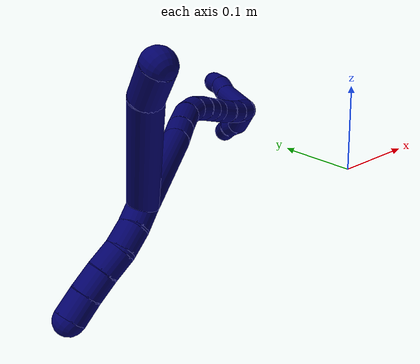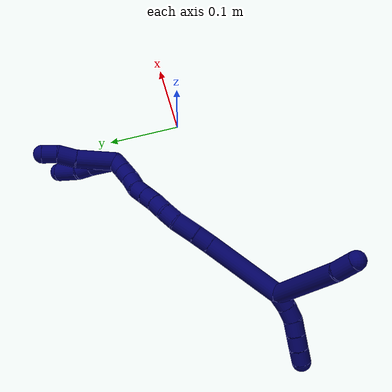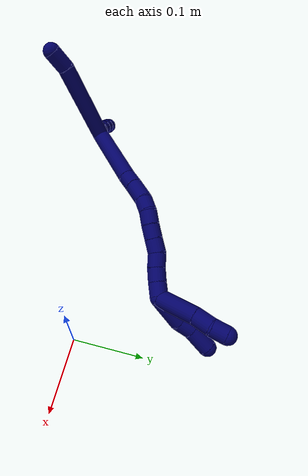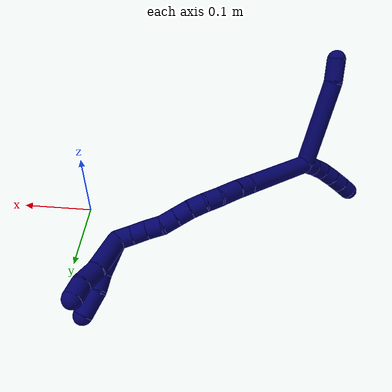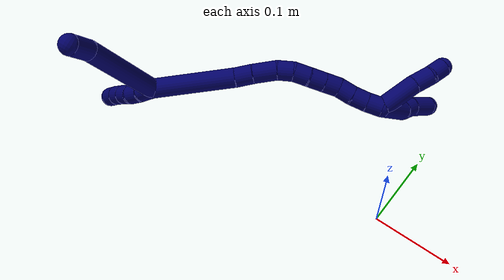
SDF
<sdf version="1.7">
 <world name="default">
  <model name="7">
   <static>0</static>
   <link name="7">
    <collision name="collision-cylinder-e_1_2_8">
     <pose>-0.058359 0.011297 0.002438 -1.35821 -1.37529 1.17093</pose>
     <geometry><cylinder><radius>0.0125</radius><length>0.118984</length></cylinder></geometry>
     <surface>
      <friction><ode><mu>1.16</mu><mu2>1.16</mu2><slip1>0</slip1><slip2>0</slip2></ode></friction>
      <contact><ode><kp>1e+06</kp><kd>1</kd><max_vel>0</max_vel><min_depth>0.001</min_depth></ode></contact>
     </surface>
    </collision>
    <visual name="visual-cylinder-e_1_2_8">
     <pose>-0.058359 0.011297 0.002438 -1.35821 -1.37529 1.17093</pose>
     <geometry><cylinder><radius>0.0125</radius><length>0.118984</length></cylinder></geometry>
     <material><ambient>0.003922 0 0.403922 1</ambient></material>
    </visual>
    <collision name="collision-cylinder-e_2_8_6">
     <pose>-0.130987 0.027706 0.008155 -1.0006 -1.16847 0.693751</pose>
     <geometry><cylinder><radius>0.0125</radius><length>0.031016</length></cylinder></geometry>
     <surface>
      <friction><ode><mu>1.16</mu><mu2>1.16</mu2><slip1>0</slip1><slip2>0</slip2></ode></friction>
      <contact><ode><kp>1e+06</kp><kd>1</kd><max_vel>0</max_vel><min_depth>0.001</min_depth></ode></contact>
     </surface>
    </collision>
    <visual name="visual-cylinder-e_2_8_6">
     <pose>-0.130987 0.027706 0.008155 -1.0006 -1.16847 0.693751</pose>
     <geometry><cylinder><radius>0.0125</radius><length>0.031016</length></cylinder></geometry>
     <material><ambient>0.003922 0 0.403922 1</ambient></material>
    </visual>
    <collision name="collision-cylinder-e_1_2_9">
     <pose>0.000126 -0.008248 0.005652 0.970025 0.012557 0.006618</pose>
     <geometry><cylinder><radius>0.0125</radius><length>0.02</length></cylinder></geometry>
     <surface>
      <friction><ode><mu>1.16</mu><mu2>1.16</mu2><slip1>0</slip1><slip2>0</slip2></ode></friction>
      <contact><ode><kp>1e+06</kp><kd>1</kd><max_vel>0</max_vel><min_depth>0.001</min_depth></ode></contact>
     </surface>
    </collision>
    <visual name="visual-cylinder-e_1_2_9">
     <pose>0.000126 -0.008248 0.005652 0.970025 0.012557 0.006618</pose>
     <geometry><cylinder><radius>0.0125</radius><length>0.02</length></cylinder></geometry>
     <material><ambient>0.003922 0 0.403922 1</ambient></material>
    </visual>
    <collision name="collision-cylinder-e_2_9_10">
     <pose>0.000908 -0.025428 0.015755 1.10846 0.06571 0.04068</pose>
     <geometry><cylinder><radius>0.0125</radius><length>0.02</length></cylinder></geometry>
     <surface>
      <friction><ode><mu>1.16</mu><mu2>1.16</mu2><slip1>0</slip1><slip2>0</slip2></ode></friction>
      <contact><ode><kp>1e+06</kp><kd>1</kd><max_vel>0</max_vel><min_depth>0.001</min_depth></ode></contact>
     </surface>
    </collision>
    <visual name="visual-cylinder-e_2_9_10">
     <pose>0.000908 -0.025428 0.015755 1.10846 0.06571 0.04068</pose>
     <geometry><cylinder><radius>0.0125</radius><length>0.02</length></cylinder></geometry>
     <material><ambient>0.003922 0 0.403922 1</ambient></material>
    </visual>
    <collision name="collision-cylinder-e_3_10_11">
     <pose>0.00331 -0.043912 0.022591 1.32622 0.175501 0.137221</pose>
     <geometry><cylinder><radius>0.0125</radius><length>0.02</length></cylinder></geometry>
     <surface>
      <friction><ode><mu>1.16</mu><mu2>1.16</mu2><slip1>0</slip1><slip2>0</slip2></ode></friction>
      <contact><ode><kp>1e+06</kp><kd>1</kd><max_vel>0</max_vel><min_depth>0.001</min_depth></ode></contact>
     </surface>
    </collision>
    <visual name="visual-cylinder-e_3_10_11">
     <pose>0.00331 -0.043912 0.022591 1.32622 0.175501 0.137221</pose>
     <geometry><cylinder><radius>0.0125</radius><length>0.02</length></cylinder></geometry>
     <material><ambient>0.003922 0 0.403922 1</ambient></material>
    </visual>
    <collision name="collision-cylinder-e_4_11_12">
     <pose>0.00727 -0.062838 0.027668 1.29103 0.223185 0.168394</pose>
     <geometry><cylinder><radius>0.0125</radius><length>0.02</length></cylinder></geometry>
     <surface>
      <friction><ode><mu>1.16</mu><mu2>1.16</mu2><slip1>0</slip1><slip2>0</slip2></ode></friction>
      <contact><ode><kp>1e+06</kp><kd>1</kd><max_vel>0</max_vel><min_depth>0.001</min_depth></ode></contact>
     </surface>
    </collision>
    <visual name="visual-cylinder-e_4_11_12">
     <pose>0.00727 -0.062838 0.027668 1.29103 0.223185 0.168394</pose>
     <geometry><cylinder><radius>0.0125</radius><length>0.02</length></cylinder></geometry>
     <material><ambient>0.003922 0 0.403922 1</ambient></material>
    </visual>
    <collision name="collision-cylinder-e_5_12_5">
     <pose>0.012014 -0.081394 0.033404 1.25074 0.255911 0.185263</pose>
     <geometry><cylinder><radius>0.0125</radius><length>0.02</length></cylinder></geometry>
     <surface>
      <friction><ode><mu>1.16</mu><mu2>1.16</mu2><slip1>0</slip1><slip2>0</slip2></ode></friction>
      <contact><ode><kp>1e+06</kp><kd>1</kd><max_vel>0</max_vel><min_depth>0.001</min_depth></ode></contact>
     </surface>
    </collision>
    <visual name="visual-cylinder-e_5_12_5">
     <pose>0.012014 -0.081394 0.033404 1.25074 0.255911 0.185263</pose>
     <geometry><cylinder><radius>0.0125</radius><length>0.02</length></cylinder></geometry>
     <material><ambient>0.003922 0 0.403922 1</ambient></material>
    </visual>
    <collision name="collision-cylinder-e_1_2_13">
     <pose>0.023101 0.035407 -0.032645 -2.31562 0.447251 -0.957502</pose>
     <geometry><cylinder><radius>0.0125</radius><length>0.106827</length></cylinder></geometry>
     <surface>
      <friction><ode><mu>1.16</mu><mu2>1.16</mu2><slip1>0</slip1><slip2>0</slip2></ode></friction>
      <contact><ode><kp>1e+06</kp><kd>1</kd><max_vel>0</max_vel><min_depth>0.001</min_depth></ode></contact>
     </surface>
    </collision>
    <visual name="visual-cylinder-e_1_2_13">
     <pose>0.023101 0.035407 -0.032645 -2.31562 0.447251 -0.957502</pose>
     <geometry><cylinder><radius>0.0125</radius><length>0.106827</length></cylinder></geometry>
     <material><ambient>0.003922 0 0.403922 1</ambient></material>
    </visual>
    <collision name="collision-cylinder-e_2_13_14">
     <pose>0.050439 0.078006 -0.072651 -2.36788 0.390593 -0.904092</pose>
     <geometry><cylinder><radius>0.0125</radius><length>0.022258</length></cylinder></geometry>
     <surface>
      <friction><ode><mu>1.16</mu><mu2>1.16</mu2><slip1>0</slip1><slip2>0</slip2></ode></friction>
      <contact><ode><kp>1e+06</kp><kd>1</kd><max_vel>0</max_vel><min_depth>0.001</min_depth></ode></contact>
     </surface>
    </collision>
    <visual name="visual-cylinder-e_2_13_14">
     <pose>0.050439 0.078006 -0.072651 -2.36788 0.390593 -0.904092</pose>
     <geometry><cylinder><radius>0.0125</radius><length>0.022258</length></cylinder></geometry>
     <material><ambient>0.003922 0 0.403922 1</ambient></material>
    </visual>
    <collision name="collision-cylinder-e_3_14_15">
     <pose>0.061489 0.094783 -0.089626 -2.35766 0.465072 -1.04055</pose>
     <geometry><cylinder><radius>0.0125</radius><length>0.03038</length></cylinder></geometry>
     <surface>
      <friction><ode><mu>1.16</mu><mu2>1.16</mu2><slip1>0</slip1><slip2>0</slip2></ode></friction>
      <contact><ode><kp>1e+06</kp><kd>1</kd><max_vel>0</max_vel><min_depth>0.001</min_depth></ode></contact>
     </surface>
    </collision>
    <visual name="visual-cylinder-e_3_14_15">
     <pose>0.061489 0.094783 -0.089626 -2.35766 0.465072 -1.04055</pose>
     <geometry><cylinder><radius>0.0125</radius><length>0.03038</length></cylinder></geometry>
     <material><ambient>0.003922 0 0.403922 1</ambient></material>
    </visual>
    <collision name="collision-cylinder-e_4_15_16">
     <pose>0.074033 0.111448 -0.10373 -2.13597 0.599773 -1.02439</pose>
     <geometry><cylinder><radius>0.0125</radius><length>0.020308</length></cylinder></geometry>
     <surface>
      <friction><ode><mu>1.16</mu><mu2>1.16</mu2><slip1>0</slip1><slip2>0</slip2></ode></friction>
      <contact><ode><kp>1e+06</kp><kd>1</kd><max_vel>0</max_vel><min_depth>0.001</min_depth></ode></contact>
     </surface>
    </collision>
    <visual name="visual-cylinder-e_4_15_16">
     <pose>0.074033 0.111448 -0.10373 -2.13597 0.599773 -1.02439</pose>
     <geometry><cylinder><radius>0.0125</radius><length>0.020308</length></cylinder></geometry>
     <material><ambient>0.003922 0 0.403922 1</ambient></material>
    </visual>
    <collision name="collision-cylinder-e_5_16_17">
     <pose>0.08701 0.125076 -0.110473 -1.90233 0.807903 -1.0797</pose>
     <geometry><cylinder><radius>0.0125</radius><length>0.020049</length></cylinder></geometry>
     <surface>
      <friction><ode><mu>1.16</mu><mu2>1.16</mu2><slip1>0</slip1><slip2>0</slip2></ode></friction>
      <contact><ode><kp>1e+06</kp><kd>1</kd><max_vel>0</max_vel><min_depth>0.001</min_depth></ode></contact>
     </surface>
    </collision>
    <visual name="visual-cylinder-e_5_16_17">
     <pose>0.08701 0.125076 -0.110473 -1.90233 0.807903 -1.0797</pose>
     <geometry><cylinder><radius>0.0125</radius><length>0.020049</length></cylinder></geometry>
     <material><ambient>0.003922 0 0.403922 1</ambient></material>
    </visual>
    <collision name="collision-cylinder-e_6_17_18">
     <pose>0.102156 0.137379 -0.115105 -1.96266 0.903432 -1.25522</pose>
     <geometry><cylinder><radius>0.0125</radius><length>0.020116</length></cylinder></geometry>
     <surface>
      <friction><ode><mu>1.16</mu><mu2>1.16</mu2><slip1>0</slip1><slip2>0</slip2></ode></friction>
      <contact><ode><kp>1e+06</kp><kd>1</kd><max_vel>0</max_vel><min_depth>0.001</min_depth></ode></contact>
     </surface>
    </collision>
    <visual name="visual-cylinder-e_6_17_18">
     <pose>0.102156 0.137379 -0.115105 -1.96266 0.903432 -1.25522</pose>
     <geometry><cylinder><radius>0.0125</radius><length>0.020116</length></cylinder></geometry>
     <material><ambient>0.003922 0 0.403922 1</ambient></material>
    </visual>
    <collision name="collision-cylinder-e_7_18_19">
     <pose>0.117902 0.148841 -0.11993 -1.97573 0.901144 -1.26594</pose>
     <geometry><cylinder><radius>0.0125</radius><length>0.020013</length></cylinder></geometry>
     <surface>
      <friction><ode><mu>1.16</mu><mu2>1.16</mu2><slip1>0</slip1><slip2>0</slip2></ode></friction>
      <contact><ode><kp>1e+06</kp><kd>1</kd><max_vel>0</max_vel><min_depth>0.001</min_depth></ode></contact>
     </surface>
    </collision>
    <visual name="visual-cylinder-e_7_18_19">
     <pose>0.117902 0.148841 -0.11993 -1.97573 0.901144 -1.26594</pose>
     <geometry><cylinder><radius>0.0125</radius><length>0.020013</length></cylinder></geometry>
     <material><ambient>0.003922 0 0.403922 1</ambient></material>
    </visual>
    <collision name="collision-cylinder-e_8_19_20">
     <pose>0.132725 0.161723 -0.122466 -1.58323 0.771527 -0.780235</pose>
     <geometry><cylinder><radius>0.0125</radius><length>0.020015</length></cylinder></geometry>
     <surface>
      <friction><ode><mu>1.16</mu><mu2>1.16</mu2><slip1>0</slip1><slip2>0</slip2></ode></friction>
      <contact><ode><kp>1e+06</kp><kd>1</kd><max_vel>0</max_vel><min_depth>0.001</min_depth></ode></contact>
     </surface>
    </collision>
    <visual name="visual-cylinder-e_8_19_20">
     <pose>0.132725 0.161723 -0.122466 -1.58323 0.771527 -0.780235</pose>
     <geometry><cylinder><radius>0.0125</radius><length>0.020015</length></cylinder></geometry>
     <material><ambient>0.003922 0 0.403922 1</ambient></material>
    </visual>
    <collision name="collision-cylinder-e_9_20_21">
     <pose>0.14676 0.175865 -0.123894 -1.76054 0.782685 -0.926356</pose>
     <geometry><cylinder><radius>0.0125</radius><length>0.020017</length></cylinder></geometry>
     <surface>
      <friction><ode><mu>1.16</mu><mu2>1.16</mu2><slip1>0</slip1><slip2>0</slip2></ode></friction>
      <contact><ode><kp>1e+06</kp><kd>1</kd><max_vel>0</max_vel><min_depth>0.001</min_depth></ode></contact>
     </surface>
    </collision>
    <visual name="visual-cylinder-e_9_20_21">
     <pose>0.14676 0.175865 -0.123894 -1.76054 0.782685 -0.926356</pose>
     <geometry><cylinder><radius>0.0125</radius><length>0.020017</length></cylinder></geometry>
     <material><ambient>0.003922 0 0.403922 1</ambient></material>
    </visual>
    <collision name="collision-cylinder-e_10_21_1">
     <pose>0.160322 0.190138 -0.12736 -1.8543 0.707331 -0.914621</pose>
     <geometry><cylinder><radius>0.0125</radius><length>0.020016</length></cylinder></geometry>
     <surface>
      <friction><ode><mu>1.16</mu><mu2>1.16</mu2><slip1>0</slip1><slip2>0</slip2></ode></friction>
      <contact><ode><kp>1e+06</kp><kd>1</kd><max_vel>0</max_vel><min_depth>0.001</min_depth></ode></contact>
     </surface>
    </collision>
    <visual name="visual-cylinder-e_10_21_1">
     <pose>0.160322 0.190138 -0.12736 -1.8543 0.707331 -0.914621</pose>
     <geometry><cylinder><radius>0.0125</radius><length>0.020016</length></cylinder></geometry>
     <material><ambient>0.003922 0 0.403922 1</ambient></material>
    </visual>
    <collision name="collision-cylinder-e_1_1_22">
     <pose>0.187672 0.197066 -0.13771 3.09598 1.19477 3.07456</pose>
     <geometry><cylinder><radius>0.0125</radius><length>0.044826</length></cylinder></geometry>
     <surface>
      <friction><ode><mu>1.16</mu><mu2>1.16</mu2><slip1>0</slip1><slip2>0</slip2></ode></friction>
      <contact><ode><kp>1e+06</kp><kd>1</kd><max_vel>0</max_vel><min_depth>0.001</min_depth></ode></contact>
     </surface>
    </collision>
    <visual name="visual-cylinder-e_1_1_22">
     <pose>0.187672 0.197066 -0.13771 3.09598 1.19477 3.07456</pose>
     <geometry><cylinder><radius>0.0125</radius><length>0.044826</length></cylinder></geometry>
     <material><ambient>0.003922 0 0.403922 1</ambient></material>
    </visual>
    <collision name="collision-cylinder-e_2_22_23">
     <pose>0.216964 0.195151 -0.152556 2.91323 0.89281 2.67125</pose>
     <geometry><cylinder><radius>0.0125</radius><length>0.021687</length></cylinder></geometry>
     <surface>
      <friction><ode><mu>1.16</mu><mu2>1.16</mu2><slip1>0</slip1><slip2>0</slip2></ode></friction>
      <contact><ode><kp>1e+06</kp><kd>1</kd><max_vel>0</max_vel><min_depth>0.001</min_depth></ode></contact>
     </surface>
    </collision>
    <visual name="visual-cylinder-e_2_22_23">
     <pose>0.216964 0.195151 -0.152556 2.91323 0.89281 2.67125</pose>
     <geometry><cylinder><radius>0.0125</radius><length>0.021687</length></cylinder></geometry>
     <material><ambient>0.003922 0 0.403922 1</ambient></material>
    </visual>
    <collision name="collision-cylinder-e_3_23_4">
     <pose>0.239846 0.194909 -0.167564 -2.98806 1.03957 -2.87439</pose>
     <geometry><cylinder><radius>0.0125</radius><length>0.033488</length></cylinder></geometry>
     <surface>
      <friction><ode><mu>1.16</mu><mu2>1.16</mu2><slip1>0</slip1><slip2>0</slip2></ode></friction>
      <contact><ode><kp>1e+06</kp><kd>1</kd><max_vel>0</max_vel><min_depth>0.001</min_depth></ode></contact>
     </surface>
    </collision>
    <visual name="visual-cylinder-e_3_23_4">
     <pose>0.239846 0.194909 -0.167564 -2.98806 1.03957 -2.87439</pose>
     <geometry><cylinder><radius>0.0125</radius><length>0.033488</length></cylinder></geometry>
     <material><ambient>0.003922 0 0.403922 1</ambient></material>
    </visual>
    <collision name="collision-cylinder-e_1_1_24">
     <pose>0.177666 0.201355 -0.153461 -2.97976 0.419781 -2.41414</pose>
     <geometry><cylinder><radius>0.0125</radius><length>0.0532</length></cylinder></geometry>
     <surface>
      <friction><ode><mu>1.16</mu><mu2>1.16</mu2><slip1>0</slip1><slip2>0</slip2></ode></friction>
      <contact><ode><kp>1e+06</kp><kd>1</kd><max_vel>0</max_vel><min_depth>0.001</min_depth></ode></contact>
     </surface>
    </collision>
    <visual name="visual-cylinder-e_1_1_24">
     <pose>0.177666 0.201355 -0.153461 -2.97976 0.419781 -2.41414</pose>
     <geometry><cylinder><radius>0.0125</radius><length>0.0532</length></cylinder></geometry>
     <material><ambient>0.003922 0 0.403922 1</ambient></material>
    </visual>
    <collision name="collision-cylinder-e_2_24_25">
     <pose>0.19333 0.209498 -0.188581 -2.77895 0.384367 -1.63033</pose>
     <geometry><cylinder><radius>0.0125</radius><length>0.025721</length></cylinder></geometry>
     <surface>
      <friction><ode><mu>1.16</mu><mu2>1.16</mu2><slip1>0</slip1><slip2>0</slip2></ode></friction>
      <contact><ode><kp>1e+06</kp><kd>1</kd><max_vel>0</max_vel><min_depth>0.001</min_depth></ode></contact>
     </surface>
    </collision>
    <visual name="visual-cylinder-e_2_24_25">
     <pose>0.19333 0.209498 -0.188581 -2.77895 0.384367 -1.63033</pose>
     <geometry><cylinder><radius>0.0125</radius><length>0.025721</length></cylinder></geometry>
     <material><ambient>0.003922 0 0.403922 1</ambient></material>
    </visual>
    <collision name="collision-cylinder-e_3_25_3">
     <pose>0.203316 0.214641 -0.20887 -3.042 0.511982 -2.76526</pose>
     <geometry><cylinder><radius>0.0125</radius><length>0.021079</length></cylinder></geometry>
     <surface>
      <friction><ode><mu>1.16</mu><mu2>1.16</mu2><slip1>0</slip1><slip2>0</slip2></ode></friction>
      <contact><ode><kp>1e+06</kp><kd>1</kd><max_vel>0</max_vel><min_depth>0.001</min_depth></ode></contact>
     </surface>
    </collision>
    <visual name="visual-cylinder-e_3_25_3">
     <pose>0.203316 0.214641 -0.20887 -3.042 0.511982 -2.76526</pose>
     <geometry><cylinder><radius>0.0125</radius><length>0.021079</length></cylinder></geometry>
     <material><ambient>0.003922 0 0.403922 1</ambient></material>
    </visual>
    <collision name="collision-sphere-3">
     <pose>0.208479 0.215555 -0.218013 0 -0 0</pose>
     <geometry><sphere><radius>0.0125</radius></sphere></geometry>
     <surface>
      <friction><ode><mu>1.16</mu><mu2>1.16</mu2><slip1>0</slip1><slip2>0</slip2></ode></friction>
      <contact><ode><kp>1e+06</kp><kd>1</kd><max_vel>0</max_vel><min_depth>0.001</min_depth></ode></contact>
     </surface>
    </collision>
    <visual name="visual-sphere-3">
     <pose>0.208479 0.215555 -0.218013 0 -0 0</pose>
     <geometry><sphere><radius>0.0125</radius></sphere></geometry>
     <material><ambient>0.003922 0 0.403922 1</ambient></material>
    </visual>
    <collision name="collision-sphere-25">
     <pose>0.198152 0.213728 -0.199728 0 -0 0</pose>
     <geometry><sphere><radius>0.0125</radius></sphere></geometry>
     <surface>
      <friction><ode><mu>1.16</mu><mu2>1.16</mu2><slip1>0</slip1><slip2>0</slip2></ode></friction>
      <contact><ode><kp>1e+06</kp><kd>1</kd><max_vel>0</max_vel><min_depth>0.001</min_depth></ode></contact>
     </surface>
    </collision>
    <visual name="visual-sphere-25">
     <pose>0.198152 0.213728 -0.199728 0 -0 0</pose>
     <geometry><sphere><radius>0.0125</radius></sphere></geometry>
     <material><ambient>0.003922 0 0.403922 1</ambient></material>
    </visual>
    <collision name="collision-sphere-24">
     <pose>0.188507 0.205269 -0.177434 0 -0 0</pose>
     <geometry><sphere><radius>0.0125</radius></sphere></geometry>
     <surface>
      <friction><ode><mu>1.16</mu><mu2>1.16</mu2><slip1>0</slip1><slip2>0</slip2></ode></friction>
      <contact><ode><kp>1e+06</kp><kd>1</kd><max_vel>0</max_vel><min_depth>0.001</min_depth></ode></contact>
     </surface>
    </collision>
    <visual name="visual-sphere-24">
     <pose>0.188507 0.205269 -0.177434 0 -0 0</pose>
     <geometry><sphere><radius>0.0125</radius></sphere></geometry>
     <material><ambient>0.003922 0 0.403922 1</ambient></material>
    </visual>
    <collision name="collision-sphere-4">
     <pose>0.254282 0.196206 -0.175946 0 -0 0</pose>
     <geometry><sphere><radius>0.0125</radius></sphere></geometry>
     <surface>
      <friction><ode><mu>1.16</mu><mu2>1.16</mu2><slip1>0</slip1><slip2>0</slip2></ode></friction>
      <contact><ode><kp>1e+06</kp><kd>1</kd><max_vel>0</max_vel><min_depth>0.001</min_depth></ode></contact>
     </surface>
    </collision>
    <visual name="visual-sphere-4">
     <pose>0.254282 0.196206 -0.175946 0 -0 0</pose>
     <geometry><sphere><radius>0.0125</radius></sphere></geometry>
     <material><ambient>0.003922 0 0.403922 1</ambient></material>
    </visual>
    <collision name="collision-sphere-23">
     <pose>0.22541 0.193612 -0.159181 0 -0 0</pose>
     <geometry><sphere><radius>0.0125</radius></sphere></geometry>
     <surface>
      <friction><ode><mu>1.16</mu><mu2>1.16</mu2><slip1>0</slip1><slip2>0</slip2></ode></friction>
      <contact><ode><kp>1e+06</kp><kd>1</kd><max_vel>0</max_vel><min_depth>0.001</min_depth></ode></contact>
     </surface>
    </collision>
    <visual name="visual-sphere-23">
     <pose>0.22541 0.193612 -0.159181 0 -0 0</pose>
     <geometry><sphere><radius>0.0125</radius></sphere></geometry>
     <material><ambient>0.003922 0 0.403922 1</ambient></material>
    </visual>
    <collision name="collision-sphere-22">
     <pose>0.208519 0.196691 -0.145932 0 -0 0</pose>
     <geometry><sphere><radius>0.0125</radius></sphere></geometry>
     <surface>
      <friction><ode><mu>1.16</mu><mu2>1.16</mu2><slip1>0</slip1><slip2>0</slip2></ode></friction>
      <contact><ode><kp>1e+06</kp><kd>1</kd><max_vel>0</max_vel><min_depth>0.001</min_depth></ode></contact>
     </surface>
    </collision>
    <visual name="visual-sphere-22">
     <pose>0.208519 0.196691 -0.145932 0 -0 0</pose>
     <geometry><sphere><radius>0.0125</radius></sphere></geometry>
     <material><ambient>0.003922 0 0.403922 1</ambient></material>
    </visual>
    <collision name="collision-sphere-1">
     <pose>0.166825 0.197442 -0.129488 0 -0 0</pose>
     <geometry><sphere><radius>0.0125</radius></sphere></geometry>
     <surface>
      <friction><ode><mu>1.16</mu><mu2>1.16</mu2><slip1>0</slip1><slip2>0</slip2></ode></friction>
      <contact><ode><kp>1e+06</kp><kd>1</kd><max_vel>0</max_vel><min_depth>0.001</min_depth></ode></contact>
     </surface>
    </collision>
    <visual name="visual-sphere-1">
     <pose>0.166825 0.197442 -0.129488 0 -0 0</pose>
     <geometry><sphere><radius>0.0125</radius></sphere></geometry>
     <material><ambient>0.003922 0 0.403922 1</ambient></material>
    </visual>
    <collision name="collision-sphere-21">
     <pose>0.153818 0.182834 -0.125232 0 -0 0</pose>
     <geometry><sphere><radius>0.0125</radius></sphere></geometry>
     <surface>
      <friction><ode><mu>1.16</mu><mu2>1.16</mu2><slip1>0</slip1><slip2>0</slip2></ode></friction>
      <contact><ode><kp>1e+06</kp><kd>1</kd><max_vel>0</max_vel><min_depth>0.001</min_depth></ode></contact>
     </surface>
    </collision>
    <visual name="visual-sphere-21">
     <pose>0.153818 0.182834 -0.125232 0 -0 0</pose>
     <geometry><sphere><radius>0.0125</radius></sphere></geometry>
     <material><ambient>0.003922 0 0.403922 1</ambient></material>
    </visual>
    <collision name="collision-sphere-11">
     <pose>0.005056 -0.053465 0.024975 0 -0 0</pose>
     <geometry><sphere><radius>0.0125</radius></sphere></geometry>
     <surface>
      <friction><ode><mu>1.16</mu><mu2>1.16</mu2><slip1>0</slip1><slip2>0</slip2></ode></friction>
      <contact><ode><kp>1e+06</kp><kd>1</kd><max_vel>0</max_vel><min_depth>0.001</min_depth></ode></contact>
     </surface>
    </collision>
    <visual name="visual-sphere-11">
     <pose>0.005056 -0.053465 0.024975 0 -0 0</pose>
     <geometry><sphere><radius>0.0125</radius></sphere></geometry>
     <material><ambient>0.003922 0 0.403922 1</ambient></material>
    </visual>
    <collision name="collision-sphere-10">
     <pose>0.001564 -0.034358 0.020206 0 -0 0</pose>
     <geometry><sphere><radius>0.0125</radius></sphere></geometry>
     <surface>
      <friction><ode><mu>1.16</mu><mu2>1.16</mu2><slip1>0</slip1><slip2>0</slip2></ode></friction>
      <contact><ode><kp>1e+06</kp><kd>1</kd><max_vel>0</max_vel><min_depth>0.001</min_depth></ode></contact>
     </surface>
    </collision>
    <visual name="visual-sphere-10">
     <pose>0.001564 -0.034358 0.020206 0 -0 0</pose>
     <geometry><sphere><radius>0.0125</radius></sphere></geometry>
     <material><ambient>0.003922 0 0.403922 1</ambient></material>
    </visual>
    <collision name="collision-sphere-6">
     <pose>-0.145257 0.032818 0.011433 0 -0 0</pose>
     <geometry><sphere><radius>0.0125</radius></sphere></geometry>
     <surface>
      <friction><ode><mu>1.16</mu><mu2>1.16</mu2><slip1>0</slip1><slip2>0</slip2></ode></friction>
      <contact><ode><kp>1e+06</kp><kd>1</kd><max_vel>0</max_vel><min_depth>0.001</min_depth></ode></contact>
     </surface>
    </collision>
    <visual name="visual-sphere-6">
     <pose>-0.145257 0.032818 0.011433 0 -0 0</pose>
     <geometry><sphere><radius>0.0125</radius></sphere></geometry>
     <material><ambient>0.003922 0 0.403922 1</ambient></material>
    </visual>
    <collision name="collision-sphere-9">
     <pose>0.000251 -0.016497 0.011305 0 -0 0</pose>
     <geometry><sphere><radius>0.0125</radius></sphere></geometry>
     <surface>
      <friction><ode><mu>1.16</mu><mu2>1.16</mu2><slip1>0</slip1><slip2>0</slip2></ode></friction>
      <contact><ode><kp>1e+06</kp><kd>1</kd><max_vel>0</max_vel><min_depth>0.001</min_depth></ode></contact>
     </surface>
    </collision>
    <visual name="visual-sphere-9">
     <pose>0.000251 -0.016497 0.011305 0 -0 0</pose>
     <geometry><sphere><radius>0.0125</radius></sphere></geometry>
     <material><ambient>0.003922 0 0.403922 1</ambient></material>
    </visual>
    <collision name="collision-sphere-2">
     <geometry><sphere><radius>0.0125</radius></sphere></geometry>
     <surface>
      <friction><ode><mu>1.16</mu><mu2>1.16</mu2><slip1>0</slip1><slip2>0</slip2></ode></friction>
      <contact><ode><kp>1e+06</kp><kd>1</kd><max_vel>0</max_vel><min_depth>0.001</min_depth></ode></contact>
     </surface>
    </collision>
    <visual name="visual-sphere-2">
     <geometry><sphere><radius>0.0125</radius></sphere></geometry>
     <material><ambient>0.003922 0 0.403922 1</ambient></material>
    </visual>
    <collision name="collision-sphere-19">
     <pose>0.125748 0.15455 -0.122377 0 -0 0</pose>
     <geometry><sphere><radius>0.0125</radius></sphere></geometry>
     <surface>
      <friction><ode><mu>1.16</mu><mu2>1.16</mu2><slip1>0</slip1><slip2>0</slip2></ode></friction>
      <contact><ode><kp>1e+06</kp><kd>1</kd><max_vel>0</max_vel><min_depth>0.001</min_depth></ode></contact>
     </surface>
    </collision>
    <visual name="visual-sphere-19">
     <pose>0.125748 0.15455 -0.122377 0 -0 0</pose>
     <geometry><sphere><radius>0.0125</radius></sphere></geometry>
     <material><ambient>0.003922 0 0.403922 1</ambient></material>
    </visual>
    <collision name="collision-sphere-8">
     <pose>-0.116717 0.022595 0.004877 0 -0 0</pose>
     <geometry><sphere><radius>0.0125</radius></sphere></geometry>
     <surface>
      <friction><ode><mu>1.16</mu><mu2>1.16</mu2><slip1>0</slip1><slip2>0</slip2></ode></friction>
      <contact><ode><kp>1e+06</kp><kd>1</kd><max_vel>0</max_vel><min_depth>0.001</min_depth></ode></contact>
     </surface>
    </collision>
    <visual name="visual-sphere-8">
     <pose>-0.116717 0.022595 0.004877 0 -0 0</pose>
     <geometry><sphere><radius>0.0125</radius></sphere></geometry>
     <material><ambient>0.003922 0 0.403922 1</ambient></material>
    </visual>
    <collision name="collision-sphere-12">
     <pose>0.009483 -0.072211 0.03036 0 -0 0</pose>
     <geometry><sphere><radius>0.0125</radius></sphere></geometry>
     <surface>
      <friction><ode><mu>1.16</mu><mu2>1.16</mu2><slip1>0</slip1><slip2>0</slip2></ode></friction>
      <contact><ode><kp>1e+06</kp><kd>1</kd><max_vel>0</max_vel><min_depth>0.001</min_depth></ode></contact>
     </surface>
    </collision>
    <visual name="visual-sphere-12">
     <pose>0.009483 -0.072211 0.03036 0 -0 0</pose>
     <geometry><sphere><radius>0.0125</radius></sphere></geometry>
     <material><ambient>0.003922 0 0.403922 1</ambient></material>
    </visual>
    <collision name="collision-sphere-5">
     <pose>0.014546 -0.090577 0.036448 0 -0 0</pose>
     <geometry><sphere><radius>0.0125</radius></sphere></geometry>
     <surface>
      <friction><ode><mu>1.16</mu><mu2>1.16</mu2><slip1>0</slip1><slip2>0</slip2></ode></friction>
      <contact><ode><kp>1e+06</kp><kd>1</kd><max_vel>0</max_vel><min_depth>0.001</min_depth></ode></contact>
     </surface>
    </collision>
    <visual name="visual-sphere-5">
     <pose>0.014546 -0.090577 0.036448 0 -0 0</pose>
     <geometry><sphere><radius>0.0125</radius></sphere></geometry>
     <material><ambient>0.003922 0 0.403922 1</ambient></material>
    </visual>
    <collision name="collision-sphere-13">
     <pose>0.046201 0.070815 -0.065289 0 -0 0</pose>
     <geometry><sphere><radius>0.0125</radius></sphere></geometry>
     <surface>
      <friction><ode><mu>1.16</mu><mu2>1.16</mu2><slip1>0</slip1><slip2>0</slip2></ode></friction>
      <contact><ode><kp>1e+06</kp><kd>1</kd><max_vel>0</max_vel><min_depth>0.001</min_depth></ode></contact>
     </surface>
    </collision>
    <visual name="visual-sphere-13">
     <pose>0.046201 0.070815 -0.065289 0 -0 0</pose>
     <geometry><sphere><radius>0.0125</radius></sphere></geometry>
     <material><ambient>0.003922 0 0.403922 1</ambient></material>
    </visual>
    <collision name="collision-sphere-14">
     <pose>0.054676 0.085197 -0.080012 0 -0 0</pose>
     <geometry><sphere><radius>0.0125</radius></sphere></geometry>
     <surface>
      <friction><ode><mu>1.16</mu><mu2>1.16</mu2><slip1>0</slip1><slip2>0</slip2></ode></friction>
      <contact><ode><kp>1e+06</kp><kd>1</kd><max_vel>0</max_vel><min_depth>0.001</min_depth></ode></contact>
     </surface>
    </collision>
    <visual name="visual-sphere-14">
     <pose>0.054676 0.085197 -0.080012 0 -0 0</pose>
     <geometry><sphere><radius>0.0125</radius></sphere></geometry>
     <material><ambient>0.003922 0 0.403922 1</ambient></material>
    </visual>
    <collision name="collision-sphere-15">
     <pose>0.068301 0.104369 -0.099241 0 -0 0</pose>
     <geometry><sphere><radius>0.0125</radius></sphere></geometry>
     <surface>
      <friction><ode><mu>1.16</mu><mu2>1.16</mu2><slip1>0</slip1><slip2>0</slip2></ode></friction>
      <contact><ode><kp>1e+06</kp><kd>1</kd><max_vel>0</max_vel><min_depth>0.001</min_depth></ode></contact>
     </surface>
    </collision>
    <visual name="visual-sphere-15">
     <pose>0.068301 0.104369 -0.099241 0 -0 0</pose>
     <geometry><sphere><radius>0.0125</radius></sphere></geometry>
     <material><ambient>0.003922 0 0.403922 1</ambient></material>
    </visual>
    <collision name="collision-sphere-16">
     <pose>0.079764 0.118526 -0.108218 0 -0 0</pose>
     <geometry><sphere><radius>0.0125</radius></sphere></geometry>
     <surface>
      <friction><ode><mu>1.16</mu><mu2>1.16</mu2><slip1>0</slip1><slip2>0</slip2></ode></friction>
      <contact><ode><kp>1e+06</kp><kd>1</kd><max_vel>0</max_vel><min_depth>0.001</min_depth></ode></contact>
     </surface>
    </collision>
    <visual name="visual-sphere-16">
     <pose>0.079764 0.118526 -0.108218 0 -0 0</pose>
     <geometry><sphere><radius>0.0125</radius></sphere></geometry>
     <material><ambient>0.003922 0 0.403922 1</ambient></material>
    </visual>
    <collision name="collision-sphere-17">
     <pose>0.094256 0.131626 -0.112728 0 -0 0</pose>
     <geometry><sphere><radius>0.0125</radius></sphere></geometry>
     <surface>
      <friction><ode><mu>1.16</mu><mu2>1.16</mu2><slip1>0</slip1><slip2>0</slip2></ode></friction>
      <contact><ode><kp>1e+06</kp><kd>1</kd><max_vel>0</max_vel><min_depth>0.001</min_depth></ode></contact>
     </surface>
    </collision>
    <visual name="visual-sphere-17">
     <pose>0.094256 0.131626 -0.112728 0 -0 0</pose>
     <geometry><sphere><radius>0.0125</radius></sphere></geometry>
     <material><ambient>0.003922 0 0.403922 1</ambient></material>
    </visual>
    <collision name="collision-sphere-18">
     <pose>0.110057 0.143132 -0.117483 0 -0 0</pose>
     <geometry><sphere><radius>0.0125</radius></sphere></geometry>
     <surface>
      <friction><ode><mu>1.16</mu><mu2>1.16</mu2><slip1>0</slip1><slip2>0</slip2></ode></friction>
      <contact><ode><kp>1e+06</kp><kd>1</kd><max_vel>0</max_vel><min_depth>0.001</min_depth></ode></contact>
     </surface>
    </collision>
    <visual name="visual-sphere-18">
     <pose>0.110057 0.143132 -0.117483 0 -0 0</pose>
     <geometry><sphere><radius>0.0125</radius></sphere></geometry>
     <material><ambient>0.003922 0 0.403922 1</ambient></material>
    </visual>
    <collision name="collision-sphere-20">
     <pose>0.139703 0.168896 -0.122555 0 -0 0</pose>
     <geometry><sphere><radius>0.0125</radius></sphere></geometry>
     <surface>
      <friction><ode><mu>1.16</mu><mu2>1.16</mu2><slip1>0</slip1><slip2>0</slip2></ode></friction>
      <contact><ode><kp>1e+06</kp><kd>1</kd><max_vel>0</max_vel><min_depth>0.001</min_depth></ode></contact>
     </surface>
    </collision>
    <visual name="visual-sphere-20">
     <pose>0.139703 0.168896 -0.122555 0 -0 0</pose>
     <geometry><sphere><radius>0.0125</radius></sphere></geometry>
     <material><ambient>0.003922 0 0.403922 1</ambient></material>
    </visual>
    <inertial>
     <pose>0.068334 0.089946 -0.07228 0 -0 0</pose>
     <mass>0.75</mass>
     <inertia><ixx>3e-06</ixx><ixy>0</ixy><ixz>0</ixz><iyy>0.000105</iyy><iyz>0</iyz><izz>-5.4e-05</izz></inertia>
    </inertial>
   </link>
   <pose>-0.310854 -0.049697 0.072543 2.43865 0.966394 0.795687</pose>
  </model>
 </world>
</sdf>
